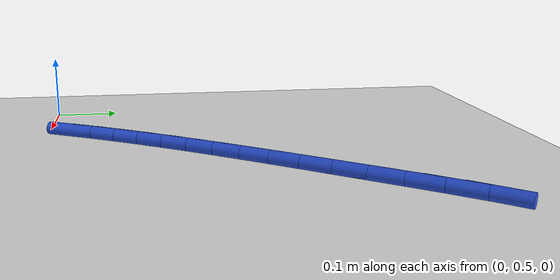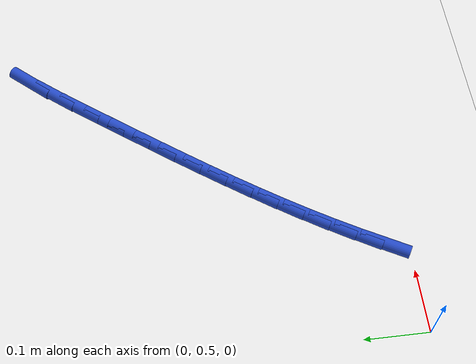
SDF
<sdf version="1.6">
 <world name="default">
  <model name="ground_plane">
   <static>1</static>
   <link name="link">
    <collision name="collision">
     <geometry><plane><normal>0 0 1</normal><size>100 100</size></plane></geometry>
     <surface><friction><ode><mu>100</mu><mu2>50</mu2></ode></friction></surface>
    </collision>
    <visual name="visual">
     <cast_shadows>0</cast_shadows>
     <geometry><plane><normal>0 0 1</normal><size>100 100</size></plane></geometry>
     <material>
      <script><uri>file://media/materials/scripts/gazebo.material</uri><name>Gazebo/WhiteGlow</name></script>
     </material>
    </visual>
   </link>
  </model>
  <model name="line">
   <link name="link_13">
    <pose>0.14533890878113806 0.5377241556120066 0.01 0 1.57 1.0680969405776368</pose>
    <collision name="collision">
     <geometry><cylinder><radius>0.01</radius><length>0.08</length></cylinder></geometry>
    </collision>
    <visual name="visual">
     <material>
      <script><name>Gazebo/Blue</name><uri>file://media/materials/scripts/gazebo.material</uri></script>
     </material>
     <geometry><cylinder><radius>0.01</radius><length>0.08</length></cylinder></geometry>
    </visual>
   </link>
   <link name="link_14">
    <pose>0.16557138625769782 0.5745230111083144 0.01 0 1.57 1.042652330992362</pose>
    <collision name="collision">
     <geometry><cylinder><radius>0.01</radius><length>0.08</length></cylinder></geometry>
    </collision>
    <visual name="visual">
     <material>
      <script><name>Gazebo/Blue</name><uri>file://media/materials/scripts/gazebo.material</uri></script>
     </material>
     <geometry><cylinder><radius>0.01</radius><length>0.08</length></cylinder></geometry>
    </visual>
   </link>
   <link name="link_15">
    <pose>0.18688013021017347 0.611046450015012 0.01 0 1.57 1.0196437410248822</pose>
    <collision name="collision">
     <geometry><cylinder><radius>0.01</radius><length>0.08</length></cylinder></geometry>
    </collision>
    <visual name="visual">
     <material>
      <script><name>Gazebo/Blue</name><uri>file://media/materials/scripts/gazebo.material</uri></script>
     </material>
     <geometry><cylinder><radius>0.01</radius><length>0.08</length></cylinder></geometry>
    </visual>
   </link>
   <link name="link_16">
    <pose>0.20923003121309977 0.6474059513714147 0.01 0 1.57 0.9991528003072331</pose>
    <collision name="collision">
     <geometry><cylinder><radius>0.01</radius><length>0.08</length></cylinder></geometry>
    </collision>
    <visual name="visual">
     <material>
      <script><name>Gazebo/Blue</name><uri>file://media/materials/scripts/gazebo.material</uri></script>
     </material>
     <geometry><cylinder><radius>0.01</radius><length>0.08</length></cylinder></geometry>
    </visual>
   </link>
   <link name="link_17">
    <pose>0.23258597984101165 0.6837129942168374 0.01 0 1.57 0.9812182529761322</pose>
    <collision name="collision">
     <geometry><cylinder><radius>0.01</radius><length>0.08</length></cylinder></geometry>
    </collision>
    <visual name="visual">
     <material>
      <script><name>Gazebo/Blue</name><uri>file://media/materials/scripts/gazebo.material</uri></script>
     </material>
     <geometry><cylinder><radius>0.01</radius><length>0.08</length></cylinder></geometry>
    </visual>
   </link>
   <link name="link_18">
    <pose>0.25691286666844404 0.7200790575905953 0.01 0 1.57 0.9658407849082543</pose>
    <collision name="collision">
     <geometry><cylinder><radius>0.01</radius><length>0.08</length></cylinder></geometry>
    </collision>
    <visual name="visual">
     <material>
      <script><name>Gazebo/Blue</name><uri>file://media/materials/scripts/gazebo.material</uri></script>
     </material>
     <geometry><cylinder><radius>0.01</radius><length>0.08</length></cylinder></geometry>
    </visual>
   </link>
   <link name="link_19">
    <pose>0.28217558226993167 0.7566156205320035 0.01 0 1.57 0.9529884020396097</pose>
    <collision name="collision">
     <geometry><cylinder><radius>0.01</radius><length>0.08</length></cylinder></geometry>
    </collision>
    <visual name="visual">
     <material>
      <script><name>Gazebo/Blue</name><uri>file://media/materials/scripts/gazebo.material</uri></script>
     </material>
     <geometry><cylinder><radius>0.01</radius><length>0.08</length></cylinder></geometry>
    </visual>
   </link>
   <link name="link_20">
    <pose>0.30833901722000967 0.7934341620803772 0.01 0 1.57 0.9426018967775512</pose>
    <collision name="collision">
     <geometry><cylinder><radius>0.01</radius><length>0.08</length></cylinder></geometry>
    </collision>
    <visual name="visual">
     <material>
      <script><name>Gazebo/Blue</name><uri>file://media/materials/scripts/gazebo.material</uri></script>
     </material>
     <geometry><cylinder><radius>0.01</radius><length>0.08</length></cylinder></geometry>
    </visual>
   </link>
   <link name="link_21">
    <pose>0.33536806209321257 0.8306461612750311 0.01 0 1.57 0.9346000682512817</pose>
    <collision name="collision">
     <geometry><cylinder><radius>0.01</radius><length>0.08</length></cylinder></geometry>
    </collision>
    <visual name="visual">
     <material>
      <script><name>Gazebo/Blue</name><uri>file://media/materials/scripts/gazebo.material</uri></script>
     </material>
     <geometry><cylinder><radius>0.01</radius><length>0.08</length></cylinder></geometry>
    </visual>
   </link>
   <link name="link_22">
    <pose>0.36322760746407534 0.8683630971552806 0.01 0 1.57 0.9288844848578905</pose>
    <collision name="collision">
     <geometry><cylinder><radius>0.01</radius><length>0.08</length></cylinder></geometry>
    </collision>
    <visual name="visual">
     <material>
      <script><name>Gazebo/Blue</name><uri>file://media/materials/scripts/gazebo.material</uri></script>
     </material>
     <geometry><cylinder><radius>0.01</radius><length>0.08</length></cylinder></geometry>
    </visual>
   </link>
   <link name="link_23">
    <pose>0.39188254390713295 0.9066964487604403 0.01 0 1.57 0.9253436805285772</pose>
    <collision name="collision">
     <geometry><cylinder><radius>0.01</radius><length>0.08</length></cylinder></geometry>
    </collision>
    <visual name="visual">
     <material>
      <script><name>Gazebo/Blue</name><uri>file://media/materials/scripts/gazebo.material</uri></script>
     </material>
     <geometry><cylinder><radius>0.01</radius><length>0.08</length></cylinder></geometry>
    </visual>
   </link>
   <link name="link_24">
    <pose>0.42129776199692004 0.9457576951298254 0.01 0 1.57 0.9236142865631829</pose>
    <collision name="collision">
     <geometry><cylinder><radius>0.01</radius><length>0.08</length></cylinder></geometry>
    </collision>
    <visual name="visual">
     <material>
      <script><name>Gazebo/Blue</name><uri>file://media/materials/scripts/gazebo.material</uri></script>
     </material>
     <geometry><cylinder><radius>0.01</radius><length>0.08</length></cylinder></geometry>
    </visual>
   </link>
   <link name="link_25">
    <pose>0.4514396891358187 0.9856402396798823 0.01 0 1.57 0.9157863498045397</pose>
    <collision name="collision">
     <geometry><cylinder><radius>0.01</radius><length>0.08</length></cylinder></geometry>
    </collision>
    <visual name="visual">
     <material>
      <script><name>Gazebo/Blue</name><uri>file://media/materials/scripts/gazebo.material</uri></script>
     </material>
     <geometry><cylinder><radius>0.01</radius><length>0.08</length></cylinder></geometry>
    </visual>
   </link>
   <link name="link_26">
    <pose>0.48232487261150736 1.0258479935513685 0.01 0 1.57 0.8923401497189923</pose>
    <collision name="collision">
     <geometry><cylinder><radius>0.01</radius><length>0.08</length></cylinder></geometry>
    </collision>
    <visual name="visual">
     <material>
      <script><name>Gazebo/Blue</name><uri>file://media/materials/scripts/gazebo.material</uri></script>
     </material>
     <geometry><cylinder><radius>0.01</radius><length>0.08</length></cylinder></geometry>
    </visual>
   </link>
   <link name="link_27">
    <pose>0.5140298895935932 1.0651788177514845 0.01 0 1.57 0.8512650316113434</pose>
    <collision name="collision">
     <geometry><cylinder><radius>0.01</radius><length>0.08</length></cylinder></geometry>
    </collision>
    <visual name="visual">
     <material>
      <script><name>Gazebo/Blue</name><uri>file://media/materials/scripts/gazebo.material</uri></script>
     </material>
     <geometry><cylinder><radius>0.01</radius><length>0.08</length></cylinder></geometry>
    </visual>
   </link>
  </model>
 </world>
</sdf>
